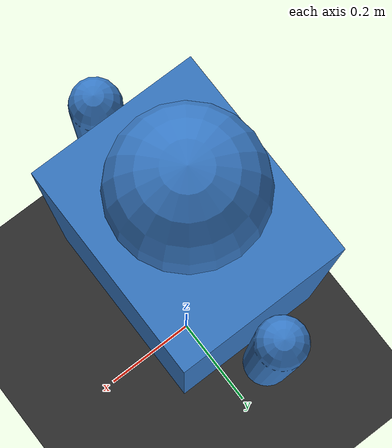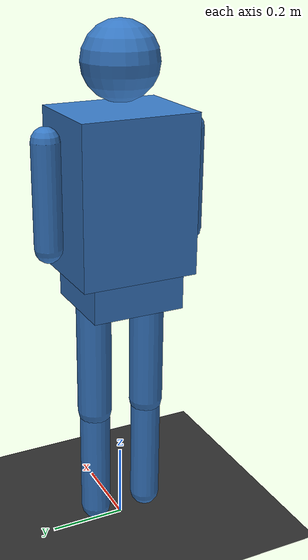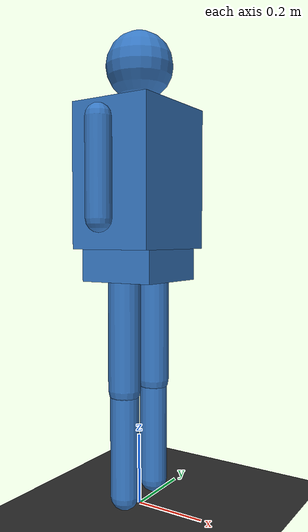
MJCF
<mujoco model="agibot_x2_headless">
  <compiler angle="radian" autolimits="true"/>
  <option timestep="0.002" gravity="0 0 -9.81"/>
  <default>
    <joint damping="2" armature="0.02"/>
    <geom type="capsule" density="700" friction="1 0.1 0.1" rgba="0.22 0.48 0.78 1"/>
    <position kp="80" kv="8" ctrllimited="true" ctrlrange="-1 1"/>
  </default>
  <worldbody>
    <light pos="0 -2 3" dir="0 1 -1"/>
    <geom name="floor" type="plane" size="5 5 0.1" rgba="0.18 0.18 0.18 1"/>
    <body name="pelvis" pos="0 0 0.72">
      <!-- A constrained root slide gives deterministic locomotion evidence in
           headless CI while retaining the X2 body/joint dimensions. -->
      <joint name="root_x" type="slide" axis="1 0 0" range="-2 2" damping="8"/>
      <geom name="pelvis_geom" type="box" size="0.11 0.12 0.07"/>
      <body name="torso" pos="0 0 0.22">
        <geom type="box" size="0.12 0.15 0.20"/>
        <body name="left_arm" pos="0 0.19 0.14">
          <joint name="left_shoulder_pitch" axis="0 1 0" range="-1.5 1.5"/>
          <geom fromto="0 0 0 0 0 -0.26" size="0.035"/>
        </body>
        <body name="right_arm" pos="0 -0.19 0.14">
          <joint name="right_shoulder_pitch" axis="0 1 0" range="-1.5 1.5"/>
          <geom fromto="0 0 0 0 0 -0.26" size="0.035"/>
        </body>
        <body name="head" pos="0 0 0.31">
          <geom type="sphere" size="0.095"/>
        </body>
      </body>
      <body name="left_leg" pos="0 0.075 -0.07">
        <joint name="left_hip_pitch" axis="0 1 0" range="-0.8 0.8"/>
        <geom fromto="0 0 0 0 0 -0.30" size="0.045"/>
        <body pos="0 0 -0.30">
          <joint name="left_knee" axis="0 1 0" range="0 1.4"/>
          <geom fromto="0 0 0 0 0 -0.30" size="0.04"/>
        </body>
      </body>
      <body name="right_leg" pos="0 -0.075 -0.07">
        <joint name="right_hip_pitch" axis="0 1 0" range="-0.8 0.8"/>
        <geom fromto="0 0 0 0 0 -0.30" size="0.045"/>
        <body pos="0 0 -0.30">
          <joint name="right_knee" axis="0 1 0" range="0 1.4"/>
          <geom fromto="0 0 0 0 0 -0.30" size="0.04"/>
        </body>
      </body>
    </body>
  </worldbody>
  <actuator>
    <position name="forward_policy" joint="root_x" ctrlrange="-2 2" kp="30" kv="6"/>
    <position name="left_shoulder_policy" joint="left_shoulder_pitch"/>
    <position name="right_shoulder_policy" joint="right_shoulder_pitch"/>
    <position name="left_hip_policy" joint="left_hip_pitch"/>
    <position name="right_hip_policy" joint="right_hip_pitch"/>
    <position name="left_knee_policy" joint="left_knee" ctrlrange="0 1"/>
    <position name="right_knee_policy" joint="right_knee" ctrlrange="0 1"/>
  </actuator>
</mujoco>
